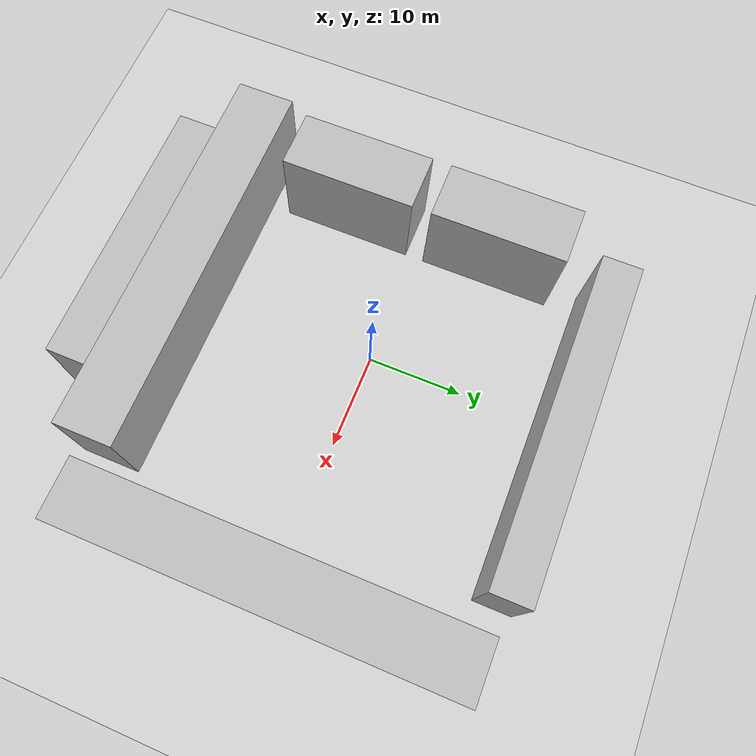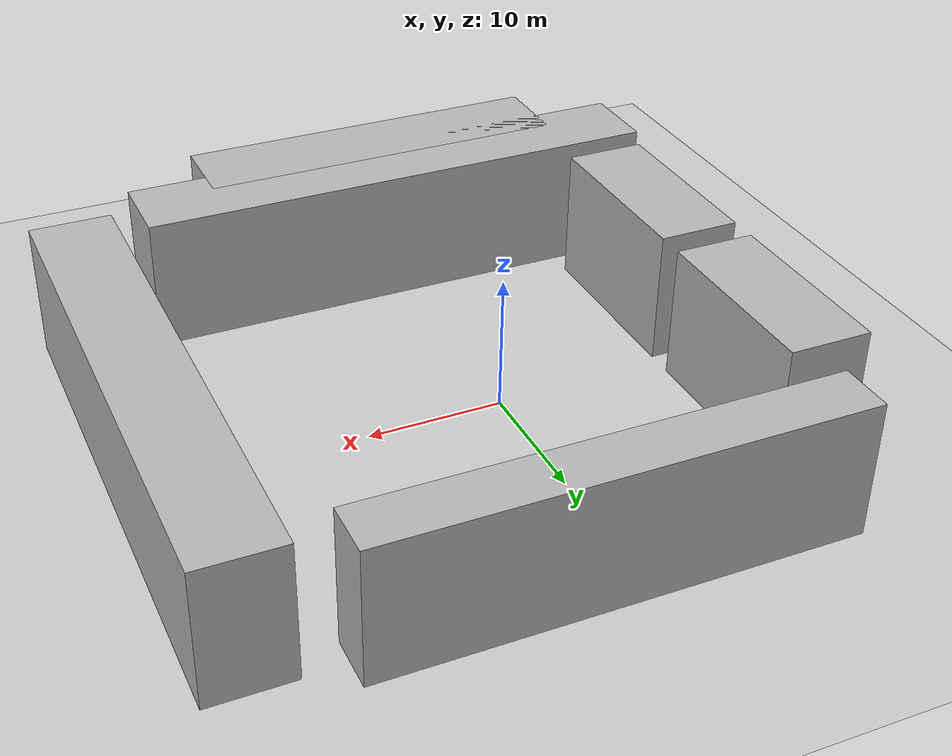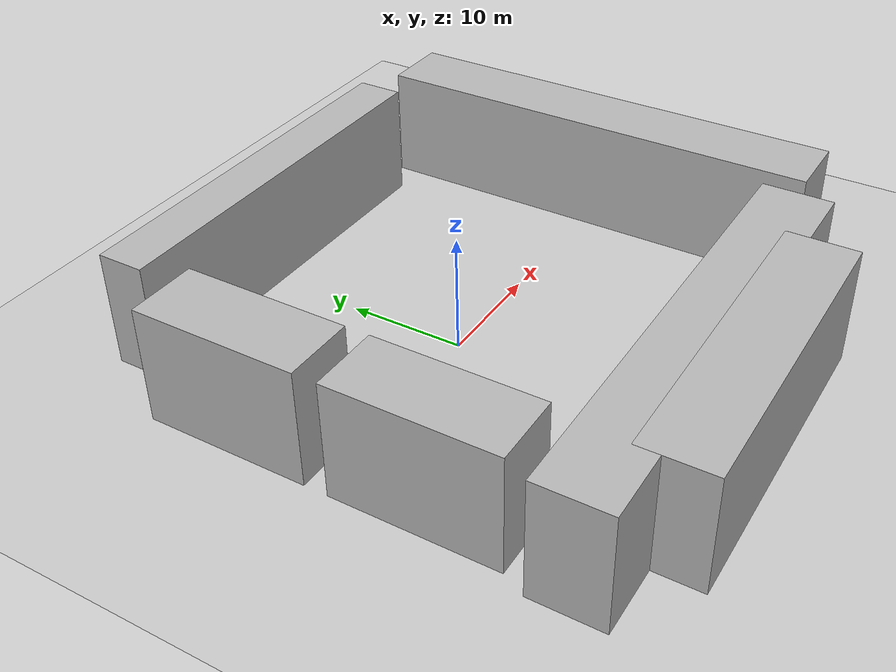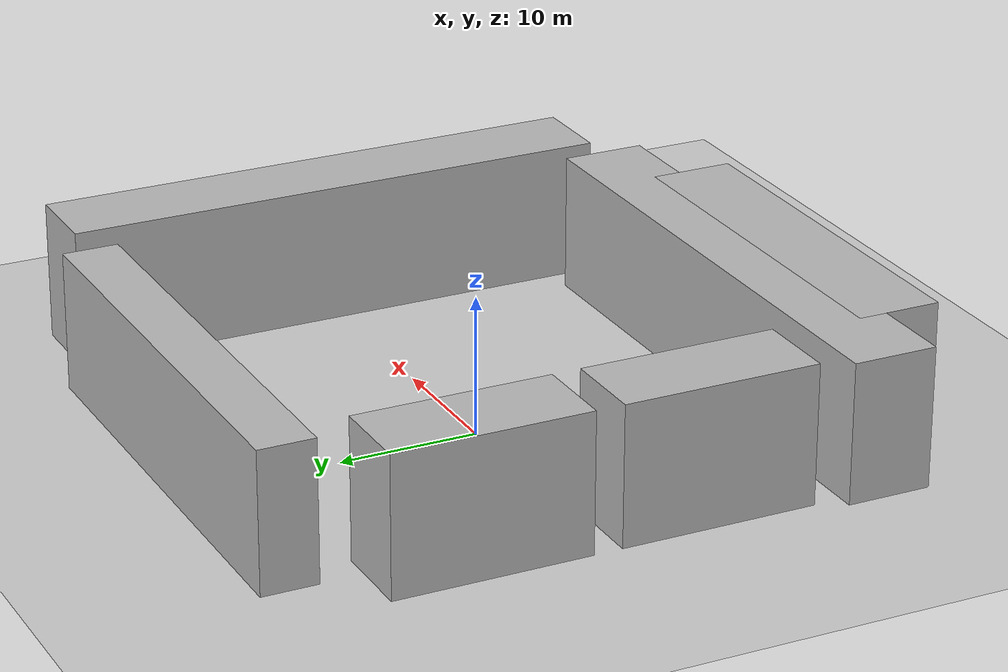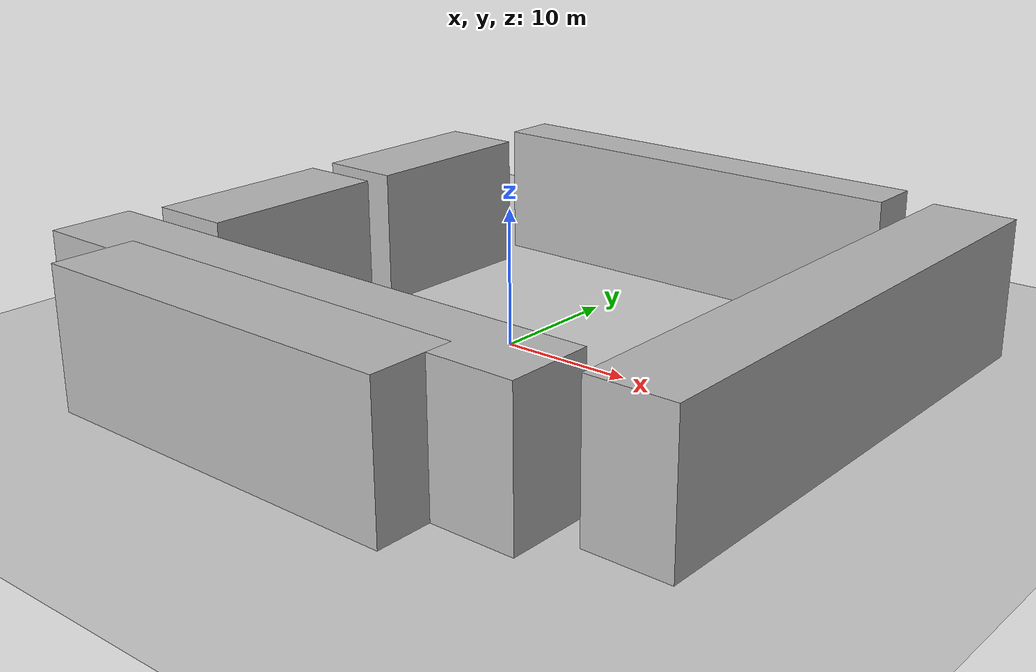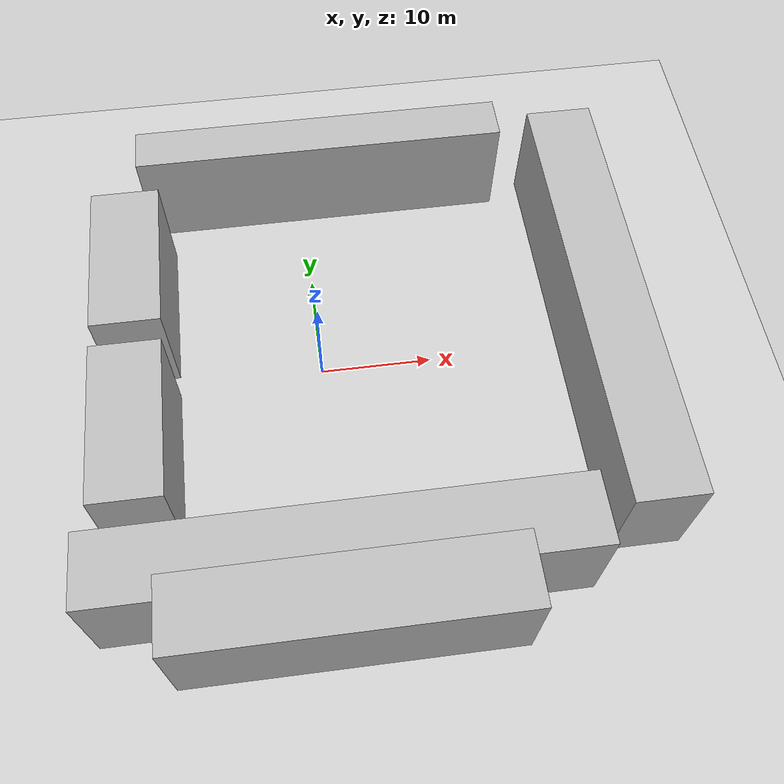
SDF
<?xml version="1.0"?>
<sdf version="1.4">
  <world name="default">
    <include>
      <uri>model://ground_plane</uri>
    </include>

    <include>
      <uri>model://sun</uri>
    </include>

    <model name ='box1'>
    <static>true</static>
    <pose>2 20 5 0 0 0</pose>
    <link name ='link'>
      <collision name ='collision'>
        <geometry>
          <box><size>34 4 10</size></box>
        </geometry>
      </collision>
      <visual name ='visual'>
        <geometry>
          <box><size>34 4 10</size></box>
        </geometry>
      </visual>
    </link>
  </model>

 <model name ='box2'>
    <static>true</static>
    <pose>0 -24 5 0 0 0</pose>
    <link name ='link'>
      <collision name ='collision'>
        <geometry>
          <box><size>28 6 10</size></box>
        </geometry>
      </collision>
      <visual name ='visual'>
        <geometry>
          <box><size>28 6 10</size></box>
        </geometry>
      </visual>
    </link>
  </model>

  <model name ='box4'>
    <static>true</static>
    <pose>0 -20 5 0 0 0</pose>
    <link name ='link'>
      <collision name ='collision'>
        <geometry>
          <box><size>40 6 10</size></box>
        </geometry>
      </collision>
      <visual name ='visual'>
        <geometry>
          <box><size>40 6 10</size></box>
        </geometry>
      </visual>
    </link>
  </model>

 <model name ='box7'>
    <static>true</static>
    <pose>25 0 5 0 0 0</pose>
    <link name ='link'>
      <collision name ='collision'>
        <geometry>
          <box><size>6 40 10</size></box>
        </geometry>
      </collision>
      <visual name ='visual'>
        <geometry>
          <box><size>6 40 10</size></box>
        </geometry>
      </visual>
    </link>
  </model>
<model name ='box8'>
    <static>true</static>
    <pose>-16 -8 5 0 0 0</pose>
    <link name ='link'>
      <collision name ='collision'>
        <geometry>
          <box><size>6 14 10</size></box>
        </geometry>
      </collision>
      <visual name ='visual'>
        <geometry>
          <box><size>6 14 10</size></box>
        </geometry>
      </visual>
    </link>
  </model>
<model name ='box9'>
    <static>true</static>
    <pose>-16 8 5 0 0 0</pose>
    <link name ='link'>
      <collision name ='collision'>
        <geometry>
          <box><size>6 14 10</size></box>
        </geometry>
      </collision>
      <visual name ='visual'>
        <geometry>
          <box><size>6 14 10</size></box>
        </geometry>
      </visual>
    </link>
  </model><physics type='ode'>
  <max_step_size>0.0010000</max_step_size>
  <gravity>0.000000 0.000000 -9.800000</gravity>
</physics>

    <plugin name="menge_plugin_randomized" filename="libmenge_plugin_randomized.so"/>
  </world>
</sdf>
